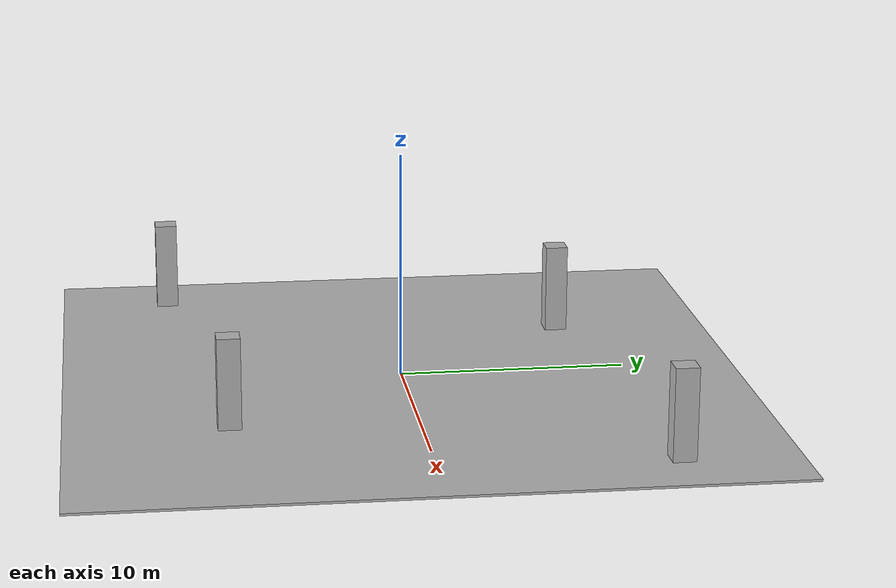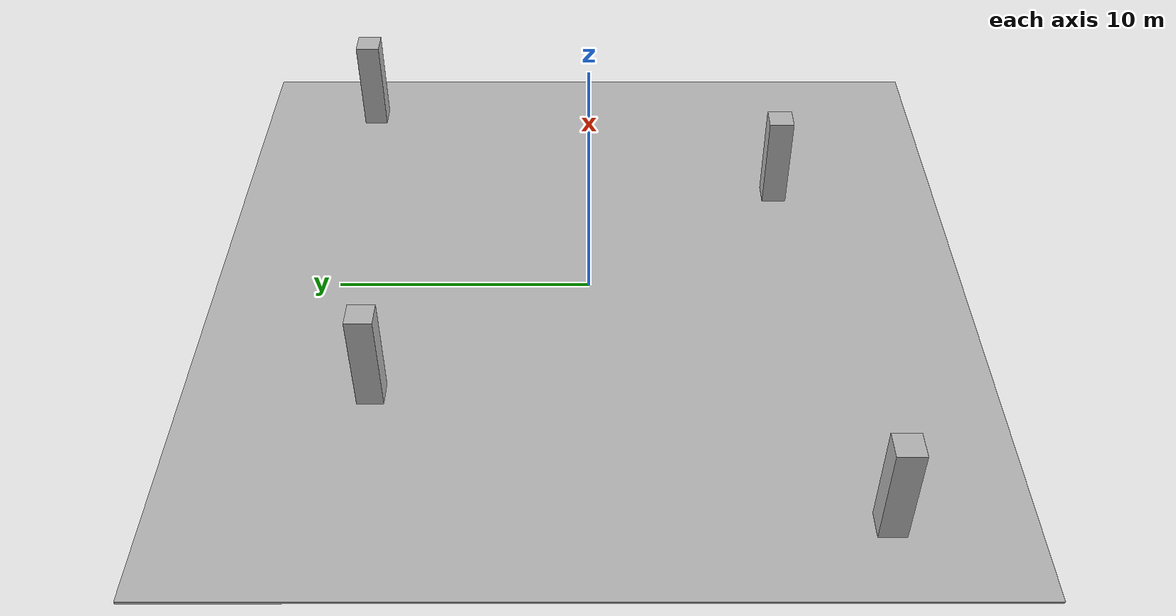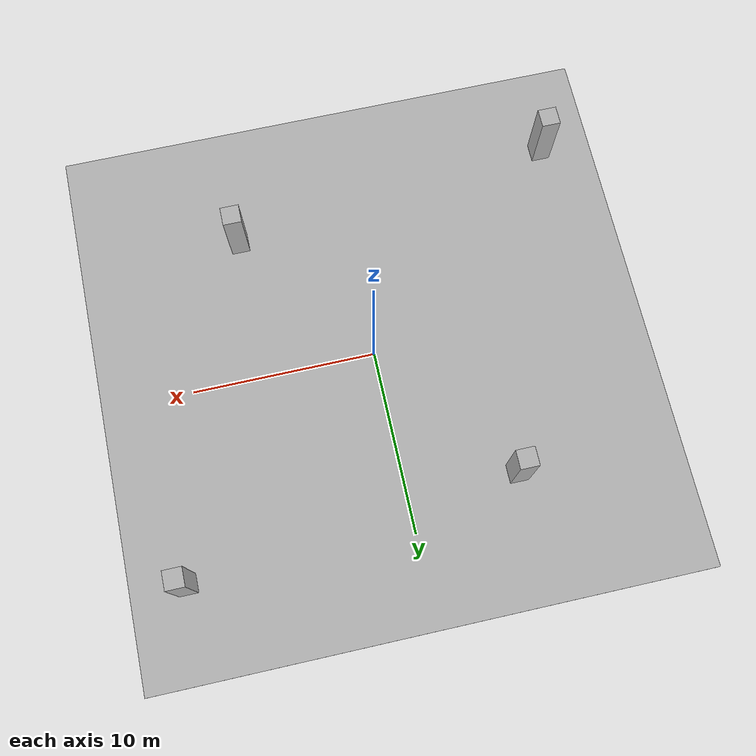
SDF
<sdf version="1.7">
 <world name="aerial_moving">
  <physics type="ode"><max_step_size>0.004</max_step_size></physics>
  <light name="sun" type="directional">
   <pose>0 0 20 0 0 0</pose>
   <diffuse>0.8 0.8 0.8 1</diffuse>
   <direction>-0.5 0.3 -1.0</direction>
  </light>
  <model name="ground_plane">
   <static>true</static>
   <pose>0 0 -0.05 0 0 0</pose>
   <link name="link">
    <collision name="collision"><geometry><box><size>30 30 0.1</size></box></geometry></collision>
    <visual name="visual"><geometry><box><size>30 30 0.1</size></box></geometry></visual>
   </link>
  </model>
  <model name="pillar_0">
   <static>true</static>
   <pose>-6.0 8.0 2 0 0 0</pose>
   <link name="link">
    <collision name="collision"><geometry><box><size>1 1 4</size></box></geometry></collision>
    <visual name="visual"><geometry><box><size>1 1 4</size></box></geometry></visual>
   </link>
  </model>
  <model name="pillar_1">
   <static>true</static>
   <pose>6.0 -8.0 2 0 0 0</pose>
   <link name="link">
    <collision name="collision"><geometry><box><size>1 1 4</size></box></geometry></collision>
    <visual name="visual"><geometry><box><size>1 1 4</size></box></geometry></visual>
   </link>
  </model>
  <model name="pillar_2">
   <static>true</static>
   <pose>12.0 10.0 2 0 0 0</pose>
   <link name="link">
    <collision name="collision"><geometry><box><size>1 1 4</size></box></geometry></collision>
    <visual name="visual"><geometry><box><size>1 1 4</size></box></geometry></visual>
   </link>
  </model>
  <model name="pillar_3">
   <static>true</static>
   <pose>-12.0 -10.0 2 0 0 0</pose>
   <link name="link">
    <collision name="collision"><geometry><box><size>1 1 4</size></box></geometry></collision>
    <visual name="visual"><geometry><box><size>1 1 4</size></box></geometry></visual>
   </link>
  </model>
 </world>
</sdf>
